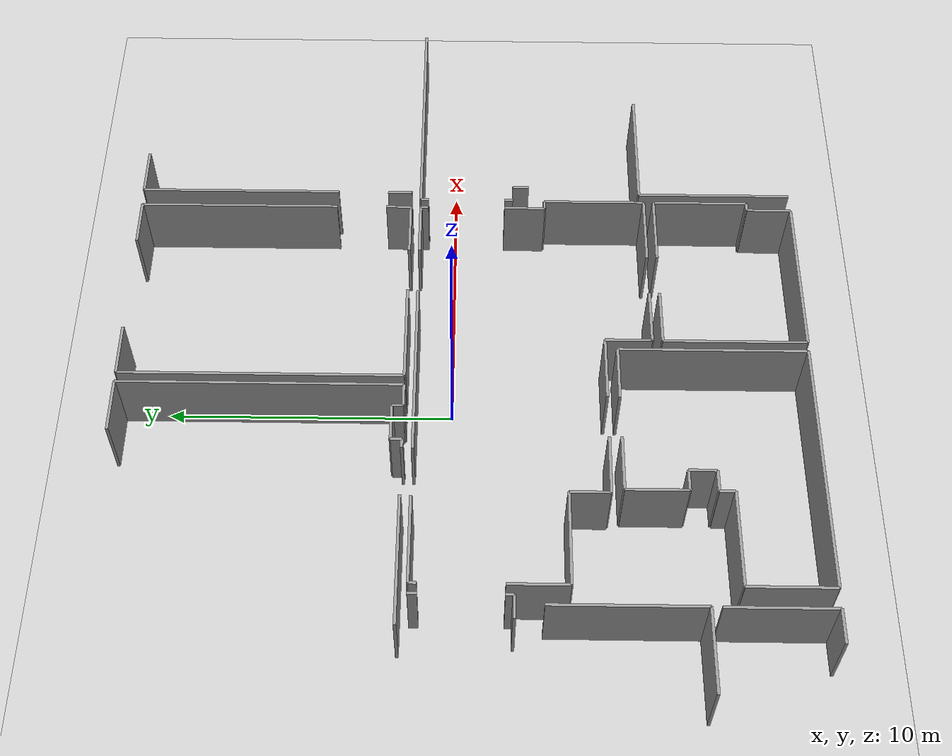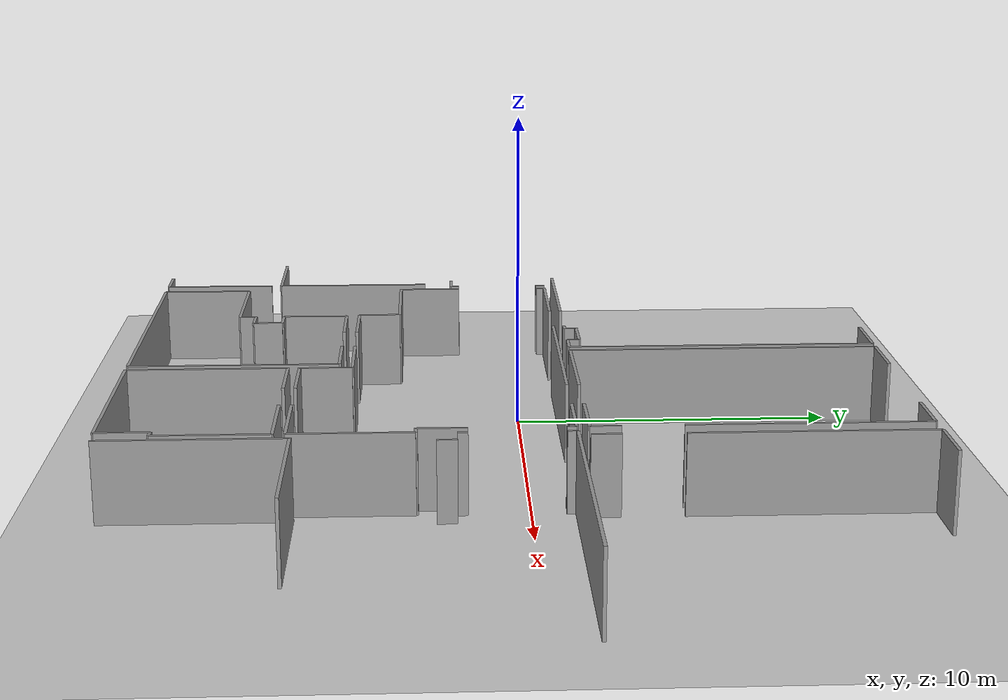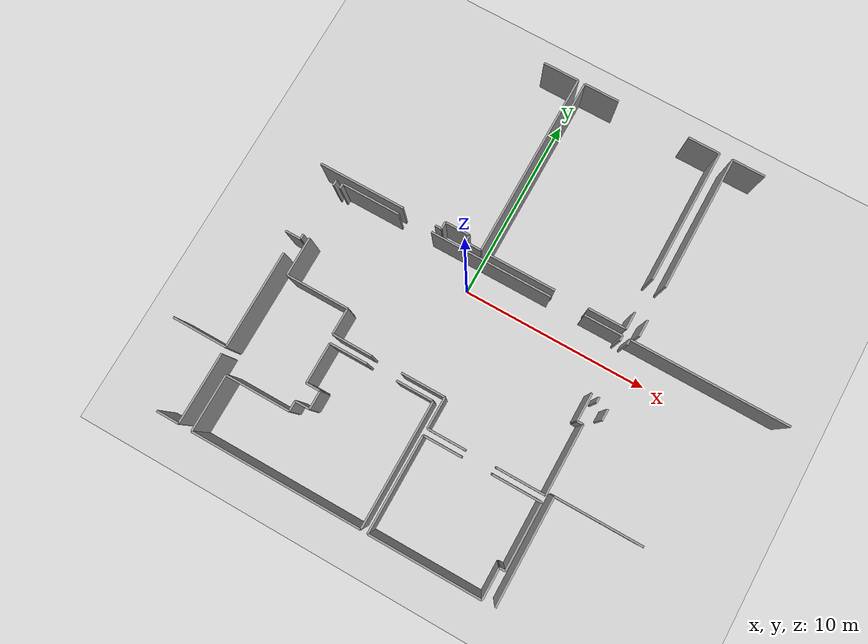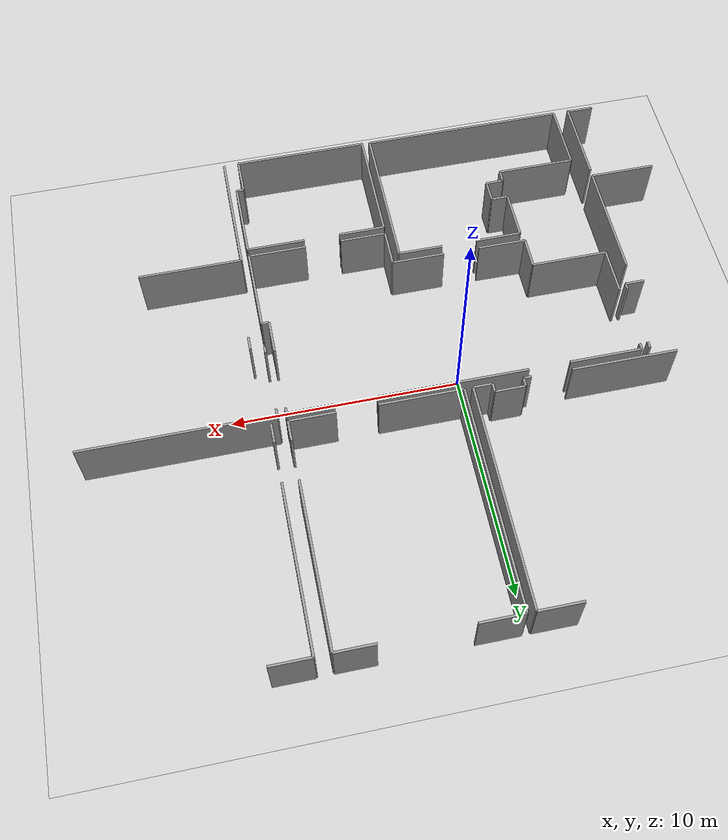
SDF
<sdf version="1.6">
 <world name="default">
  <model name="ground_plane">
   <static>1</static>
   <link name="link">
    <collision name="collision">
     <geometry><plane><normal>0 0 1</normal><size>100 100</size></plane></geometry>
     <surface><friction><ode><mu>100</mu><mu2>50</mu2></ode></friction></surface>
    </collision>
    <visual name="visual">
     <cast_shadows>0</cast_shadows>
     <geometry><plane><normal>0 0 1</normal><size>100 100</size></plane></geometry>
     <material>
      <script><uri>file://media/materials/scripts/gazebo.material</uri><name>Gazebo/Grey</name></script>
     </material>
    </visual>
   </link>
  </model>
  <model name="0510034689_Layout1">
   <static>1</static>
   <link name="Wall_96">
    <collision name="Wall_96_Collision">
     <geometry><box><size>0.319816841403 0.1 2.5</size></box></geometry>
     <pose>0.159908420701 0 1.25 0 0 0</pose>
    </collision>
    <visual name="Wall_96_Visual">
     <pose>0.159908420701 0 1.25 0 0 0</pose>
     <geometry><box><size>0.319816841403 0.1 2.5</size></box></geometry>
     <material>
      <script><uri>file://media/materials/scripts/gazebo.material</uri><name>Gazebo/Grey</name></script>
      <ambient>1 1 1 1</ambient>
     </material>
    </visual>
    <pose>48.4409563539 -11.0209898839 0 0 0 -1.57079632679</pose>
   </link>
   <link name="Wall_97">
    <collision name="Wall_97_Collision">
     <geometry><box><size>0.276666950102 0.1 2.5</size></box></geometry>
     <pose>0.138333475051 0 1.25 0 0 0</pose>
    </collision>
    <visual name="Wall_97_Visual">
     <pose>0.138333475051 0 1.25 0 0 0</pose>
     <geometry><box><size>0.276666950102 0.1 2.5</size></box></geometry>
     <material>
      <script><uri>file://media/materials/scripts/gazebo.material</uri><name>Gazebo/Grey</name></script>
      <ambient>1 1 1 1</ambient>
     </material>
    </visual>
    <pose>48.4409563539 -14.1319701352 0 0 0 -1.57079632679</pose>
   </link>
   <link name="Wall_98">
    <collision name="Wall_98_Collision">
     <geometry><box><size>0.834823485217 0.1 2.5</size></box></geometry>
     <pose>0.417411742608 0 1.25 0 0 0</pose>
    </collision>
    <visual name="Wall_98_Visual">
     <pose>0.417411742608 0 1.25 0 0 0</pose>
     <geometry><box><size>0.834823485217 0.1 2.5</size></box></geometry>
     <material>
      <script><uri>file://media/materials/scripts/gazebo.material</uri><name>Gazebo/Grey</name></script>
      <ambient>1 1 1 1</ambient>
     </material>
    </visual>
    <pose>48.4409563539 -14.4086370853 0 0 0 3.14159265359</pose>
   </link>
   <link name="Wall_183">
    <collision name="Wall_183_Collision">
     <geometry><box><size>3.72142430176 0.1 2.5</size></box></geometry>
     <pose>1.86071215088 0 1.25 0 0 0</pose>
    </collision>
    <visual name="Wall_183_Visual">
     <pose>1.86071215088 0 1.25 0 0 0</pose>
     <geometry><box><size>3.72142430176 0.1 2.5</size></box></geometry>
     <material>
      <script><uri>file://media/materials/scripts/gazebo.material</uri><name>Gazebo/Grey</name></script>
      <ambient>1 1 1 1</ambient>
     </material>
    </visual>
    <pose>48.0908076771 -20.9307431553 0 0 0 -1.57079632679</pose>
   </link>
   <link name="Wall_184">
    <collision name="Wall_184_Collision">
     <geometry><box><size>1.19563272335 0.1 2.5</size></box></geometry>
     <pose>0.597816361677 0 1.25 0 0 0</pose>
    </collision>
    <visual name="Wall_184_Visual">
     <pose>0.597816361677 0 1.25 0 0 0</pose>
     <geometry><box><size>1.19563272335 0.1 2.5</size></box></geometry>
     <material>
      <script><uri>file://media/materials/scripts/gazebo.material</uri><name>Gazebo/Grey</name></script>
      <ambient>1 1 1 1</ambient>
     </material>
    </visual>
    <pose>48.0908076771 -24.6521674571 0 0 0 3.14159265359</pose>
   </link>
   <link name="Wall_195">
    <collision name="Wall_195_Collision">
     <geometry><box><size>5.20793805706 0.1 2.5</size></box></geometry>
     <pose>2.60396902853 0 1.25 0 0 0</pose>
    </collision>
    <visual name="Wall_195_Visual">
     <pose>2.60396902853 0 1.25 0 0 0</pose>
     <geometry><box><size>5.20793805706 0.1 2.5</size></box></geometry>
     <material>
      <script><uri>file://media/materials/scripts/gazebo.material</uri><name>Gazebo/Grey</name></script>
      <ambient>1 1 1 1</ambient>
     </material>
    </visual>
    <pose>48.1014682385 -15.3697374583 0 0 0 -1.57079632679</pose>
   </link>
   <link name="Wall_196">
    <collision name="Wall_196_Collision">
     <geometry><box><size>2.90982631949 0.1 2.5</size></box></geometry>
     <pose>1.45491315975 0 1.25 0 0 0</pose>
    </collision>
    <visual name="Wall_196_Visual">
     <pose>1.45491315975 0 1.25 0 0 0</pose>
     <geometry><box><size>2.90982631949 0.1 2.5</size></box></geometry>
     <material>
      <script><uri>file://media/materials/scripts/gazebo.material</uri><name>Gazebo/Grey</name></script>
      <ambient>1 1 1 1</ambient>
     </material>
    </visual>
    <pose>48.1014682385 -20.5776755154 0 0 0 -3.140894817</pose>
   </link>
   <link name="Wall_200">
    <collision name="Wall_200_Collision">
     <geometry><box><size>1.91369767917 0.1 2.5</size></box></geometry>
     <pose>0.956848839585 0 1.25 0 0 0</pose>
    </collision>
    <visual name="Wall_200_Visual">
     <pose>0.956848839585 0 1.25 0 0 0</pose>
     <geometry><box><size>1.91369767917 0.1 2.5</size></box></geometry>
     <material>
      <script><uri>file://media/materials/scripts/gazebo.material</uri><name>Gazebo/Grey</name></script>
      <ambient>1 1 1 1</ambient>
     </material>
    </visual>
    <pose>54.3471611813 -0.759057352551 0 0 0 0.0</pose>
   </link>
   <link name="Wall_201">
    <collision name="Wall_201_Collision">
     <geometry><box><size>9.91876398405 0.1 2.5</size></box></geometry>
     <pose>4.95938199203 0 1.25 0 0 0</pose>
    </collision>
    <visual name="Wall_201_Visual">
     <pose>4.95938199203 0 1.25 0 0 0</pose>
     <geometry><box><size>9.91876398405 0.1 2.5</size></box></geometry>
     <material>
      <script><uri>file://media/materials/scripts/gazebo.material</uri><name>Gazebo/Grey</name></script>
      <ambient>1 1 1 1</ambient>
     </material>
    </visual>
    <pose>56.2608588605 -0.759057352551 0 0 0 -1.57079632679</pose>
   </link>
   <link name="Wall_202">
    <collision name="Wall_202_Collision">
     <geometry><box><size>0.841042146022 0.1 2.5</size></box></geometry>
     <pose>0.420521073011 0 1.25 0 0 0</pose>
    </collision>
    <visual name="Wall_202_Visual">
     <pose>0.420521073011 0 1.25 0 0 0</pose>
     <geometry><box><size>0.841042146022 0.1 2.5</size></box></geometry>
     <material>
      <script><uri>file://media/materials/scripts/gazebo.material</uri><name>Gazebo/Grey</name></script>
      <ambient>1 1 1 1</ambient>
     </material>
    </visual>
    <pose>56.2608588605 -10.6778213366 0 0 0 3.14159265359</pose>
   </link>
   <link name="Wall_203">
    <collision name="Wall_203_Collision">
     <geometry><box><size>0.384795501243 0.1 2.5</size></box></geometry>
     <pose>0.192397750622 0 1.25 0 0 0</pose>
    </collision>
    <visual name="Wall_203_Visual">
     <pose>0.192397750622 0 1.25 0 0 0</pose>
     <geometry><box><size>0.384795501243 0.1 2.5</size></box></geometry>
     <material>
      <script><uri>file://media/materials/scripts/gazebo.material</uri><name>Gazebo/Grey</name></script>
      <ambient>1 1 1 1</ambient>
     </material>
    </visual>
    <pose>55.4198167145 -10.6778213366 0 0 0 1.57079632679</pose>
   </link>
   <link name="Wall_204">
    <collision name="Wall_204_Collision">
     <geometry><box><size>1.33142796951 0.1 2.5</size></box></geometry>
     <pose>0.665713984753 0 1.25 0 0 0</pose>
    </collision>
    <visual name="Wall_204_Visual">
     <pose>0.665713984753 0 1.25 0 0 0</pose>
     <geometry><box><size>1.33142796951 0.1 2.5</size></box></geometry>
     <material>
      <script><uri>file://media/materials/scripts/gazebo.material</uri><name>Gazebo/Grey</name></script>
      <ambient>1 1 1 1</ambient>
     </material>
    </visual>
    <pose>55.4198167145 -10.2930258354 0 0 0 3.14159265359</pose>
   </link>
   <link name="Wall_205">
    <collision name="Wall_205_Collision">
     <geometry><box><size>0.384795501243 0.1 2.5</size></box></geometry>
     <pose>0.192397750622 0 1.25 0 0 0</pose>
    </collision>
    <visual name="Wall_205_Visual">
     <pose>0.192397750622 0 1.25 0 0 0</pose>
     <geometry><box><size>0.384795501243 0.1 2.5</size></box></geometry>
     <material>
      <script><uri>file://media/materials/scripts/gazebo.material</uri><name>Gazebo/Grey</name></script>
      <ambient>1 1 1 1</ambient>
     </material>
    </visual>
    <pose>54.088388745 -10.2930258354 0 0 0 -1.57079632679</pose>
   </link>
   <link name="Wall_206">
    <collision name="Wall_206_Collision">
     <geometry><box><size>0.340630318383 0.1 2.5</size></box></geometry>
     <pose>0.170315159191 0 1.25 0 0 0</pose>
    </collision>
    <visual name="Wall_206_Visual">
     <pose>0.170315159191 0 1.25 0 0 0</pose>
     <geometry><box><size>0.340630318383 0.1 2.5</size></box></geometry>
     <material>
      <script><uri>file://media/materials/scripts/gazebo.material</uri><name>Gazebo/Grey</name></script>
      <ambient>1 1 1 1</ambient>
     </material>
    </visual>
    <pose>54.088388745 -10.6778213366 0 0 0 3.14159265359</pose>
   </link>
   <link name="Wall_207">
    <collision name="Wall_207_Collision">
     <geometry><box><size>4.62224173838 0.1 2.5</size></box></geometry>
     <pose>2.31112086919 0 1.25 0 0 0</pose>
    </collision>
    <visual name="Wall_207_Visual">
     <pose>2.31112086919 0 1.25 0 0 0</pose>
     <geometry><box><size>4.62224173838 0.1 2.5</size></box></geometry>
     <material>
      <script><uri>file://media/materials/scripts/gazebo.material</uri><name>Gazebo/Grey</name></script>
      <ambient>1 1 1 1</ambient>
     </material>
    </visual>
    <pose>51.9683330562 -10.6778213366 0 0 0 3.14159265359</pose>
   </link>
   <link name="Wall_209">
    <collision name="Wall_209_Collision">
     <geometry><box><size>9.91952545272 0.1 2.5</size></box></geometry>
     <pose>4.95976272636 0 1.25 0 0 0</pose>
    </collision>
    <visual name="Wall_209_Visual">
     <pose>4.95976272636 0 1.25 0 0 0</pose>
     <geometry><box><size>9.91952545272 0.1 2.5</size></box></geometry>
     <material>
      <script><uri>file://media/materials/scripts/gazebo.material</uri><name>Gazebo/Grey</name></script>
      <ambient>1 1 1 1</ambient>
     </material>
    </visual>
    <pose>56.6297904311 -10.6785828053 0 0 0 1.57079632679</pose>
   </link>
   <link name="Wall_210">
    <collision name="Wall_210_Collision">
     <geometry><box><size>1.89377258231 0.1 2.5</size></box></geometry>
     <pose>0.946886291153 0 1.25 0 0 0</pose>
    </collision>
    <visual name="Wall_210_Visual">
     <pose>0.946886291153 0 1.25 0 0 0</pose>
     <geometry><box><size>1.89377258231 0.1 2.5</size></box></geometry>
     <material>
      <script><uri>file://media/materials/scripts/gazebo.material</uri><name>Gazebo/Grey</name></script>
      <ambient>1 1 1 1</ambient>
     </material>
    </visual>
    <pose>56.6297904311 -0.759057352551 0 0 0 0.0</pose>
   </link>
   <link name="Wall_211">
    <collision name="Wall_211_Collision">
     <geometry><box><size>1.7022632118 0.1 2.5</size></box></geometry>
     <pose>0.851131605899 0 1.25 0 0 0</pose>
    </collision>
    <visual name="Wall_211_Visual">
     <pose>0.851131605899 0 1.25 0 0 0</pose>
     <geometry><box><size>1.7022632118 0.1 2.5</size></box></geometry>
     <material>
      <script><uri>file://media/materials/scripts/gazebo.material</uri><name>Gazebo/Grey</name></script>
      <ambient>1 1 1 1</ambient>
     </material>
    </visual>
    <pose>62.3703758229 -0.759057352551 0 0 0 0.0</pose>
   </link>
   <link name="Wall_212">
    <collision name="Wall_212_Collision">
     <geometry><box><size>7.20146303514 0.1 2.5</size></box></geometry>
     <pose>3.60073151757 0 1.25 0 0 0</pose>
    </collision>
    <visual name="Wall_212_Visual">
     <pose>3.60073151757 0 1.25 0 0 0</pose>
     <geometry><box><size>7.20146303514 0.1 2.5</size></box></geometry>
     <material>
      <script><uri>file://media/materials/scripts/gazebo.material</uri><name>Gazebo/Grey</name></script>
      <ambient>1 1 1 1</ambient>
     </material>
    </visual>
    <pose>64.0726390347 -0.759057352551 0 0 0 -1.57079632679</pose>
   </link>
   <link name="Wall_213">
    <collision name="Wall_213_Collision">
     <geometry><box><size>0.903228754072 0.1 2.5</size></box></geometry>
     <pose>0.451614377036 0 1.25 0 0 0</pose>
    </collision>
    <visual name="Wall_213_Visual">
     <pose>0.451614377036 0 1.25 0 0 0</pose>
     <geometry><box><size>0.903228754072 0.1 2.5</size></box></geometry>
     <material>
      <script><uri>file://media/materials/scripts/gazebo.material</uri><name>Gazebo/Grey</name></script>
      <ambient>1 1 1 1</ambient>
     </material>
    </visual>
    <pose>64.0726390347 -9.77129288496 0 0 0 -1.57079632679</pose>
   </link>
   <link name="Wall_214">
    <collision name="Wall_214_Collision">
     <geometry><box><size>2.01395772072 0.1 2.5</size></box></geometry>
     <pose>1.00697886036 0 1.25 0 0 0</pose>
    </collision>
    <visual name="Wall_214_Visual">
     <pose>1.00697886036 0 1.25 0 0 0</pose>
     <geometry><box><size>2.01395772072 0.1 2.5</size></box></geometry>
     <material>
      <script><uri>file://media/materials/scripts/gazebo.material</uri><name>Gazebo/Grey</name></script>
      <ambient>1 1 1 1</ambient>
     </material>
    </visual>
    <pose>64.0726390347 -10.674521639 0 0 0 3.14159265359</pose>
   </link>
   <link name="Wall_215">
    <collision name="Wall_215_Collision">
     <geometry><box><size>3.6547980495 0.1 2.5</size></box></geometry>
     <pose>1.82739902475 0 1.25 0 0 0</pose>
    </collision>
    <visual name="Wall_215_Visual">
     <pose>1.82739902475 0 1.25 0 0 0</pose>
     <geometry><box><size>3.6547980495 0.1 2.5</size></box></geometry>
     <material>
      <script><uri>file://media/materials/scripts/gazebo.material</uri><name>Gazebo/Grey</name></script>
      <ambient>1 1 1 1</ambient>
     </material>
    </visual>
    <pose>60.2845862243 -10.674521639 0 0 0 -3.14048146577</pose>
   </link>
   <link name="Wall_216">
    <collision name="Wall_216_Collision">
     <geometry><box><size>1.38181181317 0.1 2.5</size></box></geometry>
     <pose>0.690905906586 0 1.25 0 0 0</pose>
    </collision>
    <visual name="Wall_216_Visual">
     <pose>0.690905906586 0 1.25 0 0 0</pose>
     <geometry><box><size>1.38181181317 0.1 2.5</size></box></geometry>
     <material>
      <script><uri>file://media/materials/scripts/gazebo.material</uri><name>Gazebo/Grey</name></script>
      <ambient>1 1 1 1</ambient>
     </material>
    </visual>
    <pose>52.1448668762 -17.606424765 0 0 0 1.57079632679</pose>
   </link>
   <link name="Wall_217">
    <collision name="Wall_217_Collision">
     <geometry><box><size>3.34906612213 0.1 2.5</size></box></geometry>
     <pose>1.67453306107 0 1.25 0 0 0</pose>
    </collision>
    <visual name="Wall_217_Visual">
     <pose>1.67453306107 0 1.25 0 0 0</pose>
     <geometry><box><size>3.34906612213 0.1 2.5</size></box></geometry>
     <material>
      <script><uri>file://media/materials/scripts/gazebo.material</uri><name>Gazebo/Grey</name></script>
      <ambient>1 1 1 1</ambient>
     </material>
    </visual>
    <pose>52.1448668762 -16.2246129518 0 0 0 3.14159265359</pose>
   </link>
   <link name="Wall_218">
    <collision name="Wall_218_Collision">
     <geometry><box><size>2.08109387513 0.1 2.5</size></box></geometry>
     <pose>1.04054693756 0 1.25 0 0 0</pose>
    </collision>
    <visual name="Wall_218_Visual">
     <pose>1.04054693756 0 1.25 0 0 0</pose>
     <geometry><box><size>2.08109387513 0.1 2.5</size></box></geometry>
     <material>
      <script><uri>file://media/materials/scripts/gazebo.material</uri><name>Gazebo/Grey</name></script>
      <ambient>1 1 1 1</ambient>
     </material>
    </visual>
    <pose>48.7958007541 -16.2246129518 0 0 0 1.57079632679</pose>
   </link>
   <link name="Wall_219">
    <collision name="Wall_219_Collision">
     <geometry><box><size>0.278316798887 0.1 2.5</size></box></geometry>
     <pose>0.139158399444 0 1.25 0 0 0</pose>
    </collision>
    <visual name="Wall_219_Visual">
     <pose>0.139158399444 0 1.25 0 0 0</pose>
     <geometry><box><size>0.278316798887 0.1 2.5</size></box></geometry>
     <material>
      <script><uri>file://media/materials/scripts/gazebo.material</uri><name>Gazebo/Grey</name></script>
      <ambient>1 1 1 1</ambient>
     </material>
    </visual>
    <pose>48.7958007541 -11.3208816284 0 0 0 1.57079632679</pose>
   </link>
   <link name="Wall_220">
    <collision name="Wall_220_Collision">
     <geometry><box><size>3.1507035336 0.1 2.5</size></box></geometry>
     <pose>1.5753517668 0 1.25 0 0 0</pose>
    </collision>
    <visual name="Wall_220_Visual">
     <pose>1.5753517668 0 1.25 0 0 0</pose>
     <geometry><box><size>3.1507035336 0.1 2.5</size></box></geometry>
     <material>
      <script><uri>file://media/materials/scripts/gazebo.material</uri><name>Gazebo/Grey</name></script>
      <ambient>1 1 1 1</ambient>
     </material>
    </visual>
    <pose>48.7958007541 -11.0425648295 0 0 0 0.0</pose>
   </link>
   <link name="Wall_221">
    <collision name="Wall_221_Collision">
     <geometry><box><size>6.50878036832 0.1 2.5</size></box></geometry>
     <pose>3.25439018416 0 1.25 0 0 0</pose>
    </collision>
    <visual name="Wall_221_Visual">
     <pose>3.25439018416 0 1.25 0 0 0</pose>
     <geometry><box><size>6.50878036832 0.1 2.5</size></box></geometry>
     <material>
      <script><uri>file://media/materials/scripts/gazebo.material</uri><name>Gazebo/Grey</name></script>
      <ambient>1 1 1 1</ambient>
     </material>
    </visual>
    <pose>53.7475046037 -11.0425648295 0 0 0 0.0</pose>
   </link>
   <link name="Wall_222">
    <collision name="Wall_222_Collision">
     <geometry><box><size>2.01522683517 0.1 2.5</size></box></geometry>
     <pose>1.00761341759 0 1.25 0 0 0</pose>
    </collision>
    <visual name="Wall_222_Visual">
     <pose>1.00761341759 0 1.25 0 0 0</pose>
     <geometry><box><size>2.01522683517 0.1 2.5</size></box></geometry>
     <material>
      <script><uri>file://media/materials/scripts/gazebo.material</uri><name>Gazebo/Grey</name></script>
      <ambient>1 1 1 1</ambient>
     </material>
    </visual>
    <pose>62.0579198453 -11.0425648295 0 0 0 0.0</pose>
   </link>
   <link name="Wall_223">
    <collision name="Wall_223_Collision">
     <geometry><box><size>0.278316798887 0.1 2.5</size></box></geometry>
     <pose>0.139158399444 0 1.25 0 0 0</pose>
    </collision>
    <visual name="Wall_223_Visual">
     <pose>0.139158399444 0 1.25 0 0 0</pose>
     <geometry><box><size>0.278316798887 0.1 2.5</size></box></geometry>
     <material>
      <script><uri>file://media/materials/scripts/gazebo.material</uri><name>Gazebo/Grey</name></script>
      <ambient>1 1 1 1</ambient>
     </material>
    </visual>
    <pose>64.0731466804 -11.0425648295 0 0 0 -1.57079632679</pose>
   </link>
   <link name="Wall_224">
    <collision name="Wall_224_Collision">
     <geometry><box><size>1.47877215715 0.1 2.5</size></box></geometry>
     <pose>0.739386078576 0 1.25 0 0 0</pose>
    </collision>
    <visual name="Wall_224_Visual">
     <pose>0.739386078576 0 1.25 0 0 0</pose>
     <geometry><box><size>1.47877215715 0.1 2.5</size></box></geometry>
     <material>
      <script><uri>file://media/materials/scripts/gazebo.material</uri><name>Gazebo/Grey</name></script>
      <ambient>1 1 1 1</ambient>
     </material>
    </visual>
    <pose>64.0731466804 -14.1239747142 0 0 0 -1.57079632679</pose>
   </link>
   <link name="Wall_225">
    <collision name="Wall_225_Collision">
     <geometry><box><size>0.325654767873 0.1 2.5</size></box></geometry>
     <pose>0.162827383936 0 1.25 0 0 0</pose>
    </collision>
    <visual name="Wall_225_Visual">
     <pose>0.162827383936 0 1.25 0 0 0</pose>
     <geometry><box><size>0.325654767873 0.1 2.5</size></box></geometry>
     <material>
      <script><uri>file://media/materials/scripts/gazebo.material</uri><name>Gazebo/Grey</name></script>
      <ambient>1 1 1 1</ambient>
     </material>
    </visual>
    <pose>64.0731466804 -15.6027468713 0 0 0 0.0</pose>
   </link>
   <link name="Wall_226">
    <collision name="Wall_226_Collision">
     <geometry><box><size>3.65860313649 0.1 2.5</size></box></geometry>
     <pose>1.82930156824 0 1.25 0 0 0</pose>
    </collision>
    <visual name="Wall_226_Visual">
     <pose>1.82930156824 0 1.25 0 0 0</pose>
     <geometry><box><size>3.65860313649 0.1 2.5</size></box></geometry>
     <material>
      <script><uri>file://media/materials/scripts/gazebo.material</uri><name>Gazebo/Grey</name></script>
      <ambient>1 1 1 1</ambient>
     </material>
    </visual>
    <pose>64.3988014483 -15.6027468713 0 0 0 -1.57079632679</pose>
   </link>
   <link name="Wall_227">
    <collision name="Wall_227_Collision">
     <geometry><box><size>2.55891546556 0.1 2.5</size></box></geometry>
     <pose>1.27945773278 0 1.25 0 0 0</pose>
    </collision>
    <visual name="Wall_227_Visual">
     <pose>1.27945773278 0 1.25 0 0 0</pose>
     <geometry><box><size>2.55891546556 0.1 2.5</size></box></geometry>
     <material>
      <script><uri>file://media/materials/scripts/gazebo.material</uri><name>Gazebo/Grey</name></script>
      <ambient>1 1 1 1</ambient>
     </material>
    </visual>
    <pose>64.3988014483 -19.2613500078 0 0 0 3.14159265359</pose>
   </link>
   <link name="Wall_228">
    <collision name="Wall_228_Collision">
     <geometry><box><size>2.03845162961 0.1 2.5</size></box></geometry>
     <pose>1.0192258148 0 1.25 0 0 0</pose>
    </collision>
    <visual name="Wall_228_Visual">
     <pose>1.0192258148 0 1.25 0 0 0</pose>
     <geometry><box><size>2.03845162961 0.1 2.5</size></box></geometry>
     <material>
      <script><uri>file://media/materials/scripts/gazebo.material</uri><name>Gazebo/Grey</name></script>
      <ambient>1 1 1 1</ambient>
     </material>
    </visual>
    <pose>60.248289551 -19.2613500078 0 0 0 3.14159265359</pose>
   </link>
   <link name="Wall_229">
    <collision name="Wall_229_Collision">
     <geometry><box><size>1.64210718687 0.1 2.5</size></box></geometry>
     <pose>0.821053593434 0 1.25 0 0 0</pose>
    </collision>
    <visual name="Wall_229_Visual">
     <pose>0.821053593434 0 1.25 0 0 0</pose>
     <geometry><box><size>1.64210718687 0.1 2.5</size></box></geometry>
     <material>
      <script><uri>file://media/materials/scripts/gazebo.material</uri><name>Gazebo/Grey</name></script>
      <ambient>1 1 1 1</ambient>
     </material>
    </visual>
    <pose>58.2098379214 -19.2613500078 0 0 0 1.57079632679</pose>
   </link>
   <link name="Wall_230">
    <collision name="Wall_230_Collision">
     <geometry><box><size>2.32971339588 0.1 2.5</size></box></geometry>
     <pose>1.16485669794 0 1.25 0 0 0</pose>
    </collision>
    <visual name="Wall_230_Visual">
     <pose>1.16485669794 0 1.25 0 0 0</pose>
     <geometry><box><size>2.32971339588 0.1 2.5</size></box></geometry>
     <material>
      <script><uri>file://media/materials/scripts/gazebo.material</uri><name>Gazebo/Grey</name></script>
      <ambient>1 1 1 1</ambient>
     </material>
    </visual>
    <pose>58.2098379214 -17.6192428209 0 0 0 3.14159265359</pose>
   </link>
   <link name="Wall_231">
    <collision name="Wall_231_Collision">
     <geometry><box><size>2.12352098446 0.1 2.5</size></box></geometry>
     <pose>1.06176049223 0 1.25 0 0 0</pose>
    </collision>
    <visual name="Wall_231_Visual">
     <pose>1.06176049223 0 1.25 0 0 0</pose>
     <geometry><box><size>2.12352098446 0.1 2.5</size></box></geometry>
     <material>
      <script><uri>file://media/materials/scripts/gazebo.material</uri><name>Gazebo/Grey</name></script>
      <ambient>1 1 1 1</ambient>
     </material>
    </visual>
    <pose>54.268349174 -17.6192428209 0 0 0 3.13555638935</pose>
   </link>
   <link name="Wall_232">
    <collision name="Wall_232_Collision">
     <geometry><box><size>2.9803883744 0.1 2.5</size></box></geometry>
     <pose>1.4901941872 0 1.25 0 0 0</pose>
    </collision>
    <visual name="Wall_232_Visual">
     <pose>1.4901941872 0 1.25 0 0 0</pose>
     <geometry><box><size>2.9803883744 0.1 2.5</size></box></geometry>
     <material>
      <script><uri>file://media/materials/scripts/gazebo.material</uri><name>Gazebo/Grey</name></script>
      <ambient>1 1 1 1</ambient>
     </material>
    </visual>
    <pose>48.8048114667 -24.6630818414 0 0 0 1.57079632679</pose>
   </link>
   <link name="Wall_233">
    <collision name="Wall_233_Collision">
     <geometry><box><size>3.44095000831 0.1 2.5</size></box></geometry>
     <pose>1.72047500416 0 1.25 0 0 0</pose>
    </collision>
    <visual name="Wall_233_Visual">
     <pose>1.72047500416 0 1.25 0 0 0</pose>
     <geometry><box><size>3.44095000831 0.1 2.5</size></box></geometry>
     <material>
      <script><uri>file://media/materials/scripts/gazebo.material</uri><name>Gazebo/Grey</name></script>
      <ambient>1 1 1 1</ambient>
     </material>
    </visual>
    <pose>48.8048114667 -21.682693467 0 0 0 0.0</pose>
   </link>
   <link name="Wall_234">
    <collision name="Wall_234_Collision">
     <geometry><box><size>0.539373641254 0.1 2.5</size></box></geometry>
     <pose>0.269686820627 0 1.25 0 0 0</pose>
    </collision>
    <visual name="Wall_234_Visual">
     <pose>0.269686820627 0 1.25 0 0 0</pose>
     <geometry><box><size>0.539373641254 0.1 2.5</size></box></geometry>
     <material>
      <script><uri>file://media/materials/scripts/gazebo.material</uri><name>Gazebo/Grey</name></script>
      <ambient>1 1 1 1</ambient>
     </material>
    </visual>
    <pose>52.245761475 -21.682693467 0 0 0 1.57079632679</pose>
   </link>
   <link name="Wall_235">
    <collision name="Wall_235_Collision">
     <geometry><box><size>0.773525257281 0.1 2.5</size></box></geometry>
     <pose>0.386762628641 0 1.25 0 0 0</pose>
    </collision>
    <visual name="Wall_235_Visual">
     <pose>0.386762628641 0 1.25 0 0 0</pose>
     <geometry><box><size>0.773525257281 0.1 2.5</size></box></geometry>
     <material>
      <script><uri>file://media/materials/scripts/gazebo.material</uri><name>Gazebo/Grey</name></script>
      <ambient>1 1 1 1</ambient>
     </material>
    </visual>
    <pose>52.245761475 -21.1433198257 0 0 0 0.0</pose>
   </link>
   <link name="Wall_236">
    <collision name="Wall_236_Collision">
     <geometry><box><size>0.960211992878 0.1 2.5</size></box></geometry>
     <pose>0.480105996439 0 1.25 0 0 0</pose>
    </collision>
    <visual name="Wall_236_Visual">
     <pose>0.480105996439 0 1.25 0 0 0</pose>
     <geometry><box><size>0.960211992878 0.1 2.5</size></box></geometry>
     <material>
      <script><uri>file://media/materials/scripts/gazebo.material</uri><name>Gazebo/Grey</name></script>
      <ambient>1 1 1 1</ambient>
     </material>
    </visual>
    <pose>53.0192867323 -21.1433198257 0 0 0 1.57079632679</pose>
   </link>
   <link name="Wall_237">
    <collision name="Wall_237_Collision">
     <geometry><box><size>0.757153680876 0.1 2.5</size></box></geometry>
     <pose>0.378576840438 0 1.25 0 0 0</pose>
    </collision>
    <visual name="Wall_237_Visual">
     <pose>0.378576840438 0 1.25 0 0 0</pose>
     <geometry><box><size>0.757153680876 0.1 2.5</size></box></geometry>
     <material>
      <script><uri>file://media/materials/scripts/gazebo.material</uri><name>Gazebo/Grey</name></script>
      <ambient>1 1 1 1</ambient>
     </material>
    </visual>
    <pose>53.0192867323 -20.1831078328 0 0 0 3.14159265359</pose>
   </link>
   <link name="Wall_238">
    <collision name="Wall_238_Collision">
     <geometry><box><size>2.14175754584 0.1 2.5</size></box></geometry>
     <pose>1.07087877292 0 1.25 0 0 0</pose>
    </collision>
    <visual name="Wall_238_Visual">
     <pose>1.07087877292 0 1.25 0 0 0</pose>
     <geometry><box><size>2.14175754584 0.1 2.5</size></box></geometry>
     <material>
      <script><uri>file://media/materials/scripts/gazebo.material</uri><name>Gazebo/Grey</name></script>
      <ambient>1 1 1 1</ambient>
     </material>
    </visual>
    <pose>52.2621330514 -20.1831078328 0 0 0 1.57079632679</pose>
   </link>
   <link name="Wall_239">
    <collision name="Wall_239_Collision">
     <geometry><box><size>2.00926199726 0.1 2.5</size></box></geometry>
     <pose>1.00463099863 0 1.25 0 0 0</pose>
    </collision>
    <visual name="Wall_239_Visual">
     <pose>1.00463099863 0 1.25 0 0 0</pose>
     <geometry><box><size>2.00926199726 0.1 2.5</size></box></geometry>
     <material>
      <script><uri>file://media/materials/scripts/gazebo.material</uri><name>Gazebo/Grey</name></script>
      <ambient>1 1 1 1</ambient>
     </material>
    </visual>
    <pose>52.2621330514 -18.041350287 0 0 0 0.0</pose>
   </link>
   <link name="Wall_240">
    <collision name="Wall_240_Collision">
     <geometry><box><size>1.96915798064 0.1 2.5</size></box></geometry>
     <pose>0.984578990318 0 1.25 0 0 0</pose>
    </collision>
    <visual name="Wall_240_Visual">
     <pose>0.984578990318 0 1.25 0 0 0</pose>
     <geometry><box><size>1.96915798064 0.1 2.5</size></box></geometry>
     <material>
      <script><uri>file://media/materials/scripts/gazebo.material</uri><name>Gazebo/Grey</name></script>
      <ambient>1 1 1 1</ambient>
     </material>
    </visual>
    <pose>55.8567728196 -18.041350287 0 0 0 0.0</pose>
   </link>
   <link name="Wall_241">
    <collision name="Wall_241_Collision">
     <geometry><box><size>6.60878658698 0.1 2.5</size></box></geometry>
     <pose>3.30439329349 0 1.25 0 0 0</pose>
    </collision>
    <visual name="Wall_241_Visual">
     <pose>3.30439329349 0 1.25 0 0 0</pose>
     <geometry><box><size>6.60878658698 0.1 2.5</size></box></geometry>
     <material>
      <script><uri>file://media/materials/scripts/gazebo.material</uri><name>Gazebo/Grey</name></script>
      <ambient>1 1 1 1</ambient>
     </material>
    </visual>
    <pose>57.8259308003 -18.041350287 0 0 0 -1.57079632679</pose>
   </link>
   <link name="Wall_242">
    <collision name="Wall_242_Collision">
     <geometry><box><size>9.02112862133 0.1 2.5</size></box></geometry>
     <pose>4.51056431066 0 1.25 0 0 0</pose>
    </collision>
    <visual name="Wall_242_Visual">
     <pose>4.51056431066 0 1.25 0 0 0</pose>
     <geometry><box><size>9.02112862133 0.1 2.5</size></box></geometry>
     <material>
      <script><uri>file://media/materials/scripts/gazebo.material</uri><name>Gazebo/Grey</name></script>
      <ambient>1 1 1 1</ambient>
     </material>
    </visual>
    <pose>57.8259308003 -24.650136874 0 0 0 -3.14015769214</pose>
   </link>
   <link name="Wall_243">
    <collision name="Wall_243_Collision">
     <geometry><box><size>5.03990730388 0.1 2.5</size></box></geometry>
     <pose>2.51995365194 0 1.25 0 0 0</pose>
    </collision>
    <visual name="Wall_243_Visual">
     <pose>2.51995365194 0 1.25 0 0 0</pose>
     <geometry><box><size>5.03990730388 0.1 2.5</size></box></geometry>
     <material>
      <script><uri>file://media/materials/scripts/gazebo.material</uri><name>Gazebo/Grey</name></script>
      <ambient>1 1 1 1</ambient>
     </material>
    </visual>
    <pose>58.1948623709 -24.6649855131 0 0 0 1.57079632679</pose>
   </link>
   <link name="Wall_244">
    <collision name="Wall_244_Collision">
     <geometry><box><size>2.05190424278 0.1 2.5</size></box></geometry>
     <pose>1.02595212139 0 1.25 0 0 0</pose>
    </collision>
    <visual name="Wall_244_Visual">
     <pose>1.02595212139 0 1.25 0 0 0</pose>
     <geometry><box><size>2.05190424278 0.1 2.5</size></box></geometry>
     <material>
      <script><uri>file://media/materials/scripts/gazebo.material</uri><name>Gazebo/Grey</name></script>
      <ambient>1 1 1 1</ambient>
     </material>
    </visual>
    <pose>58.1948623709 -19.6250782092 0 0 0 0.0</pose>
   </link>
   <link name="Wall_245">
    <collision name="Wall_245_Collision">
     <geometry><box><size>2.56221516313 0.1 2.5</size></box></geometry>
     <pose>1.28110758156 0 1.25 0 0 0</pose>
    </collision>
    <visual name="Wall_245_Visual">
     <pose>1.28110758156 0 1.25 0 0 0</pose>
     <geometry><box><size>2.56221516313 0.1 2.5</size></box></geometry>
     <material>
      <script><uri>file://media/materials/scripts/gazebo.material</uri><name>Gazebo/Grey</name></script>
      <ambient>1 1 1 1</ambient>
     </material>
    </visual>
    <pose>61.8363324623 -19.6250782092 0 0 0 0.0</pose>
   </link>
   <link name="Wall_246">
    <collision name="Wall_246_Collision">
     <geometry><box><size>3.42686283792 0.1 2.5</size></box></geometry>
     <pose>1.71343141896 0 1.25 0 0 0</pose>
    </collision>
    <visual name="Wall_246_Visual">
     <pose>1.71343141896 0 1.25 0 0 0</pose>
     <geometry><box><size>3.42686283792 0.1 2.5</size></box></geometry>
     <material>
      <script><uri>file://media/materials/scripts/gazebo.material</uri><name>Gazebo/Grey</name></script>
      <ambient>1 1 1 1</ambient>
     </material>
    </visual>
    <pose>64.3985476254 -19.6250782092 0 0 0 -1.57079632679</pose>
   </link>
   <link name="Wall_247">
    <collision name="Wall_247_Collision">
     <geometry><box><size>0.309156280023 0.1 2.5</size></box></geometry>
     <pose>0.154578140011 0 1.25 0 0 0</pose>
    </collision>
    <visual name="Wall_247_Visual">
     <pose>0.154578140011 0 1.25 0 0 0</pose>
     <geometry><box><size>0.309156280023 0.1 2.5</size></box></geometry>
     <material>
      <script><uri>file://media/materials/scripts/gazebo.material</uri><name>Gazebo/Grey</name></script>
      <ambient>1 1 1 1</ambient>
     </material>
    </visual>
    <pose>64.3985476254 -23.0519410471 0 0 0 3.14159265359</pose>
   </link>
   <link name="Wall_248">
    <collision name="Wall_248_Collision">
     <geometry><box><size>1.60009949857 0.1 2.5</size></box></geometry>
     <pose>0.800049749286 0 1.25 0 0 0</pose>
    </collision>
    <visual name="Wall_248_Visual">
     <pose>0.800049749286 0 1.25 0 0 0</pose>
     <geometry><box><size>1.60009949857 0.1 2.5</size></box></geometry>
     <material>
      <script><uri>file://media/materials/scripts/gazebo.material</uri><name>Gazebo/Grey</name></script>
      <ambient>1 1 1 1</ambient>
     </material>
    </visual>
    <pose>64.0893913454 -23.0519410471 0 0 0 -1.57079632679</pose>
   </link>
   <link name="Wall_249">
    <collision name="Wall_249_Collision">
     <geometry><box><size>5.89454318871 0.1 2.5</size></box></geometry>
     <pose>2.94727159436 0 1.25 0 0 0</pose>
    </collision>
    <visual name="Wall_249_Visual">
     <pose>2.94727159436 0 1.25 0 0 0</pose>
     <geometry><box><size>5.89454318871 0.1 2.5</size></box></geometry>
     <material>
      <script><uri>file://media/materials/scripts/gazebo.material</uri><name>Gazebo/Grey</name></script>
      <ambient>1 1 1 1</ambient>
     </material>
    </visual>
    <pose>64.0893913454 -24.6520405457 0 0 0 -3.13939655843</pose>
   </link>
   <link name="Wall_250">
    <collision name="Wall_250_Collision">
     <geometry><box><size>0.593184093935 0.1 2.5</size></box></geometry>
     <pose>0.296592046967 0 1.25 0 0 0</pose>
    </collision>
    <visual name="Wall_250_Visual">
     <pose>0.296592046967 0 1.25 0 0 0</pose>
     <geometry><box><size>0.593184093935 0.1 2.5</size></box></geometry>
     <material>
      <script><uri>file://media/materials/scripts/gazebo.material</uri><name>Gazebo/Grey</name></script>
      <ambient>1 1 1 1</ambient>
     </material>
    </visual>
    <pose>65.0610253683 -15.0252997966 0 0 0 1.57079632679</pose>
   </link>
   <link name="Wall_252">
    <collision name="Wall_252_Collision">
     <geometry><box><size>0.302810707772 0.1 2.5</size></box></geometry>
     <pose>0.151405353886 0 1.25 0 0 0</pose>
    </collision>
    <visual name="Wall_252_Visual">
     <pose>0.151405353886 0 1.25 0 0 0</pose>
     <geometry><box><size>0.302810707772 0.1 2.5</size></box></geometry>
     <material>
      <script><uri>file://media/materials/scripts/gazebo.material</uri><name>Gazebo/Grey</name></script>
      <ambient>1 1 1 1</ambient>
     </material>
    </visual>
    <pose>64.4552770413 -14.4321157026 0 0 0 1.57079632679</pose>
   </link>
   <link name="Wall_253">
    <collision name="Wall_253_Collision">
     <geometry><box><size>0.297480427082 0.1 2.5</size></box></geometry>
     <pose>0.148740213541 0 1.25 0 0 0</pose>
    </collision>
    <visual name="Wall_253_Visual">
     <pose>0.148740213541 0 1.25 0 0 0</pose>
     <geometry><box><size>0.297480427082 0.1 2.5</size></box></geometry>
     <material>
      <script><uri>file://media/materials/scripts/gazebo.material</uri><name>Gazebo/Grey</name></script>
      <ambient>1 1 1 1</ambient>
     </material>
    </visual>
    <pose>64.4552770413 -11.3303999868 0 0 0 1.57079632679</pose>
   </link>
   <link name="Wall_254">
    <collision name="Wall_254_Collision">
     <geometry><box><size>8.34087398836 0.1 2.5</size></box></geometry>
     <pose>4.17043699418 0 1.25 0 0 0</pose>
    </collision>
    <visual name="Wall_254_Visual">
     <pose>4.17043699418 0 1.25 0 0 0</pose>
     <geometry><box><size>8.34087398836 0.1 2.5</size></box></geometry>
     <material>
      <script><uri>file://media/materials/scripts/gazebo.material</uri><name>Gazebo/Grey</name></script>
      <ambient>1 1 1 1</ambient>
     </material>
    </visual>
    <pose>64.4552770413 -11.0329195597 0 0 0 0.0</pose>
   </link>
   <link name="Wall_291">
    <collision name="Wall_291_Collision">
     <geometry><box><size>0.891425989687 0.1 2.5</size></box></geometry>
     <pose>0.445712994844 0 1.25 0 0 0</pose>
    </collision>
    <visual name="Wall_291_Visual">
     <pose>0.445712994844 0 1.25 0 0 0</pose>
     <geometry><box><size>0.891425989687 0.1 2.5</size></box></geometry>
     <material>
      <script><uri>file://media/materials/scripts/gazebo.material</uri><name>Gazebo/Grey</name></script>
      <ambient>1 1 1 1</ambient>
     </material>
    </visual>
    <pose>64.7715403623 -10.7004115738 0 0 0 1.57079632679</pose>
   </link>
   <link name="Wall_292">
    <collision name="Wall_292_Collision">
     <geometry><box><size>7.25045085291 0.1 2.5</size></box></geometry>
     <pose>3.62522542645 0 1.25 0 0 0</pose>
    </collision>
    <visual name="Wall_292_Visual">
     <pose>3.62522542645 0 1.25 0 0 0</pose>
     <geometry><box><size>7.25045085291 0.1 2.5</size></box></geometry>
     <material>
      <script><uri>file://media/materials/scripts/gazebo.material</uri><name>Gazebo/Grey</name></script>
      <ambient>1 1 1 1</ambient>
     </material>
    </visual>
    <pose>64.7715403623 -7.98806017125 0 0 0 1.57079632679</pose>
   </link>
   <link name="Wall_293">
    <collision name="Wall_293_Collision">
     <geometry><box><size>1.74579383743 0.1 2.5</size></box></geometry>
     <pose>0.872896918717 0 1.25 0 0 0</pose>
    </collision>
    <visual name="Wall_293_Visual">
     <pose>0.872896918717 0 1.25 0 0 0</pose>
     <geometry><box><size>1.74579383743 0.1 2.5</size></box></geometry>
     <material>
      <script><uri>file://media/materials/scripts/gazebo.material</uri><name>Gazebo/Grey</name></script>
      <ambient>1 1 1 1</ambient>
     </material>
    </visual>
    <pose>64.7715403623 -0.737609318346 0 0 0 0.0</pose>
   </link>
   <link name="Wall_381">
    <collision name="Wall_381_Collision">
     <geometry><box><size>5.53206988759 0.1 2.5</size></box></geometry>
     <pose>2.7660349438 0 1.25 0 0 0</pose>
    </collision>
    <visual name="Wall_381_Visual">
     <pose>2.7660349438 0 1.25 0 0 0</pose>
     <geometry><box><size>5.53206988759 0.1 2.5</size></box></geometry>
     <material>
      <script><uri>file://media/materials/scripts/gazebo.material</uri><name>Gazebo/Grey</name></script>
      <ambient>1 1 1 1</ambient>
     </material>
    </visual>
    <pose>64.7648140557 -24.6388417554 0 0 0 1.57079632679</pose>
   </link>
   <link name="Wall_382">
    <collision name="Wall_382_Collision">
     <geometry><box><size>4.56107042189 0.1 2.5</size></box></geometry>
     <pose>2.28053521095 0 1.25 0 0 0</pose>
    </collision>
    <visual name="Wall_382_Visual">
     <pose>2.28053521095 0 1.25 0 0 0</pose>
     <geometry><box><size>4.56107042189 0.1 2.5</size></box></geometry>
     <material>
      <script><uri>file://media/materials/scripts/gazebo.material</uri><name>Gazebo/Grey</name></script>
      <ambient>1 1 1 1</ambient>
     </material>
    </visual>
    <pose>64.7648140557 -19.1067718678 0 0 0 0.0</pose>
   </link>
   <pose>-56.4 12.3396063334 0 0 0 0</pose>
  </model>
 </world>
</sdf>
